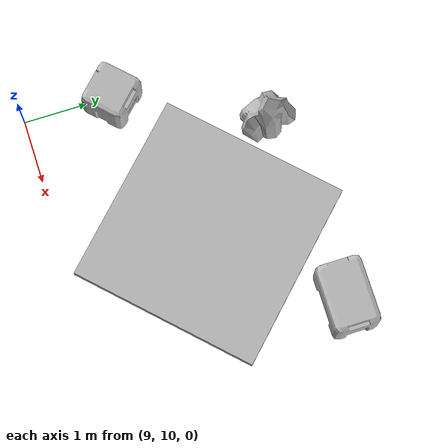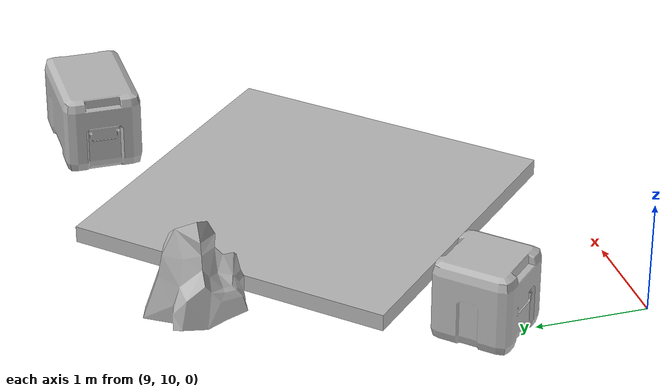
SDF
<sdf version="1.6">
 <world name="SRC_finals">
  <include>
   <name>bling_12</name>
   <pose>9.097809923786249
      11.41405200386484
      0
      0
      0
      0.7853981633974481</pose>
   <uri>model://mars_crate</uri>
  </include>
  <include>
   <name>walkway_11</name>
   <pose>11.535914105317465
      12.208840025918521
      -0.052151
      0
      0
      -2.3561944901923453</pose>
   <uri>model://walkway_finish_adjacent</uri>
  </include>
  <include>
   <name>bling_13</name>
   <pose>10.104729980195893
      13.640024151040093
      0
      0
      0
      0.785398163397448</pose>
   <uri>model://mars_rock_2</uri>
  </include>
  <include>
   <name>bling_14</name>
   <pose>13.179230264795002
      13.852156185396058
      0
      0
      0
      -2.7755575615628914e-16</pose>
   <uri>model://mars_crate_long</uri>
  </include>
 </world>
</sdf>
